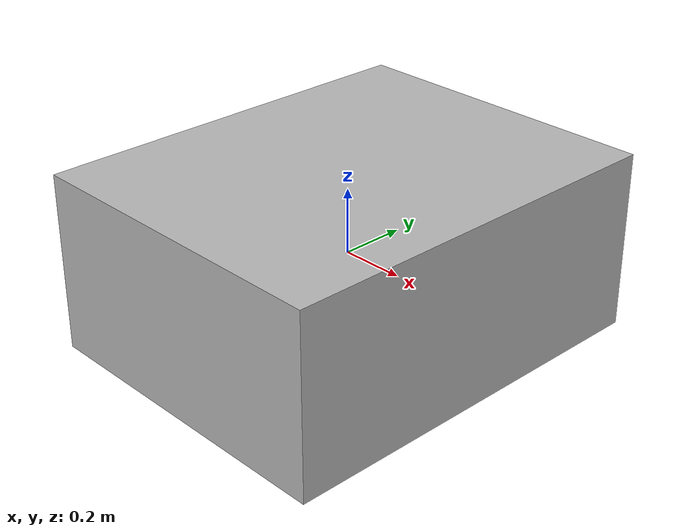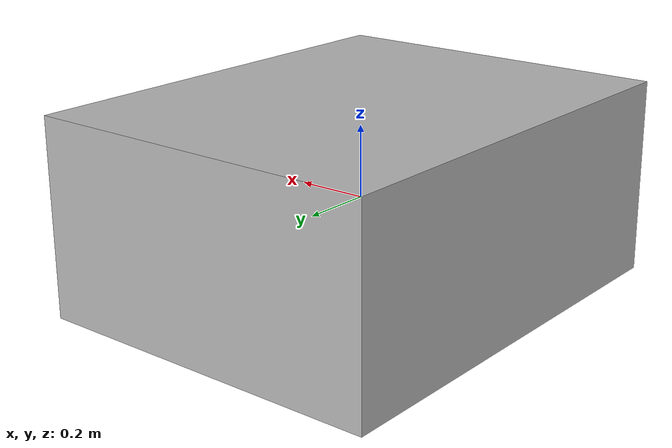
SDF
<?xml version='1.0'?>
<sdf version="1.4">
    <model name="cabbage_stage">
        <link name="link">
            <inertial>
                <mass>1</mass>
                <inertia>
                    <ixx>0.083</ixx>
                    <ixy>0.0</ixy>
                    <ixz>0.0</ixz>
                    <iyy>0.083</iyy>
                    <iyz>0.0</iyz>
                    <izz>0.083</izz>
                </inertia>
            </inertial>
            <collision name="collision">
                <geometry>
                    <box>
                        <size>1.01 1.26 0.55</size>
                    </box>
                </geometry>
            </collision>
            <visual name="visual">
                <geometry>
                    <box>
                        <size>1.01 1.26 0.55</size>
                    </box>
                </geometry>
            </visual>
        </link>
    </model>
</sdf>
